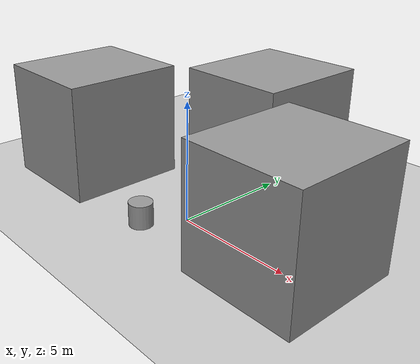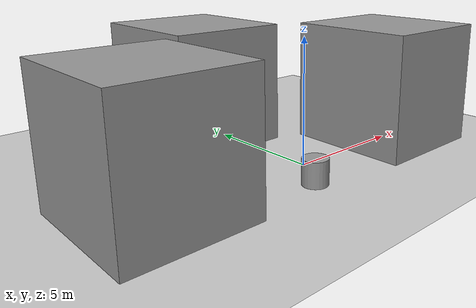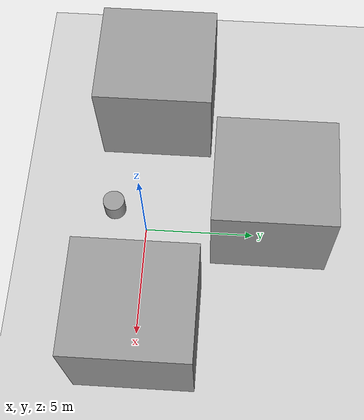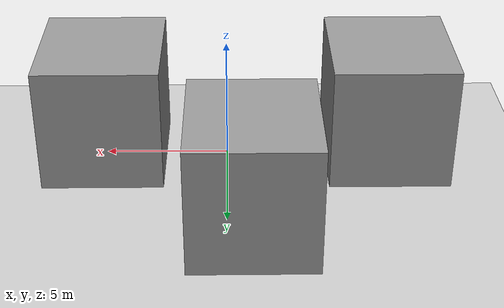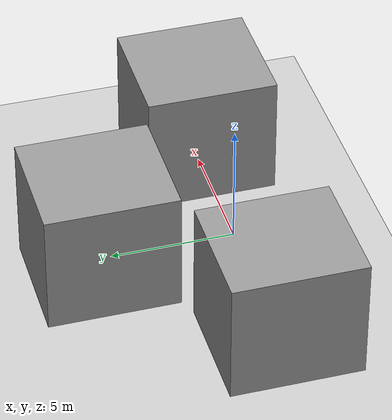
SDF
<sdf version="1.6">
 <world name="default">
  <light name="sun" type="directional">
   <pose>0 0 10 0 -0 0</pose>
   <diffuse>0.8 0.8 0.8 1</diffuse>
   <specular>0.2 0.2 0.2 1</specular>
   <attenuation>
    <range>1000</range>
    <constant>0.9</constant>
    <linear>0.01</linear>
    <quadratic>0.001</quadratic>
   </attenuation>
   <direction>-0.5 0.1 -0.9</direction>
  </light>
  <model name="ground_plane">
   <static>1</static>
   <link name="link">
    <collision name="collision">
     <geometry><plane><normal>0 0 1</normal><size>100 100</size></plane></geometry>
     <surface>
      <contact><collide_bitmask>65535</collide_bitmask></contact>
      <friction><ode><mu>100</mu><mu2>50</mu2></ode></friction>
     </surface>
    </collision>
    <visual name="visual">
     <cast_shadows>0</cast_shadows>
     <geometry><plane><normal>0 0 1</normal><size>100 100</size></plane></geometry>
     <material>
      <script><uri>file://media/materials/scripts/gazebo.material</uri><name>Gazebo/Grey</name></script>
     </material>
    </visual>
   </link>
  </model>
  <gravity>0 0 -9.8</gravity>
  <magnetic_field>6e-06 2.3e-05 -4.2e-05</magnetic_field>
  <atmosphere type="adiabatic"/>
  <physics name="default_physics" default="0" type="ode">
   <ode>
    <solver>
     <type>quick</type>
     <iters>1000</iters>
     <sor>1.3</sor>
     <use_dynamic_moi_rescaling>0</use_dynamic_moi_rescaling>
    </solver>
    <constraints>
     <cfm>0</cfm>
     <erp>0.2</erp>
     <contact_max_correcting_vel>100</contact_max_correcting_vel>
     <contact_surface_layer>0.001</contact_surface_layer>
    </constraints>
   </ode>
   <max_step_size>0.01</max_step_size>
   <real_time_factor>1</real_time_factor>
   <real_time_update_rate>100</real_time_update_rate>
  </physics>
  <scene><ambient>0.4 0.4 0.4 1</ambient><background>0.7 0.7 0.7 1</background><shadows>1</shadows></scene>
  <plugin name="ros_interface_plugin" filename="librotors_gazebo_ros_interface_plugin.so"/>
  <spherical_coordinates>
   <surface_model>EARTH_WGS84</surface_model>
   <latitude_deg>0</latitude_deg>
   <longitude_deg>0</longitude_deg>
   <elevation>0</elevation>
   <heading_deg>0</heading_deg>
  </spherical_coordinates>
  <model name="unit_box">
   <pose>-6.50878 0.170591 2.51734 -1e-06 -0 -0.000133</pose>
   <link name="link">
    <inertial>
     <mass>1</mass>
     <inertia>
      <ixx>0.166667</ixx>
      <ixy>0</ixy>
      <ixz>0</ixz>
      <iyy>0.166667</iyy>
      <iyz>0</iyz>
      <izz>0.166667</izz>
     </inertia>
    </inertial>
    <collision name="collision"><geometry><box><size>4.8634 5.26242 5.03467</size></box></geometry></collision>
    <visual name="visual">
     <geometry><box><size>4.8634 5.26242 5.03467</size></box></geometry>
     <material>
      <script><name>Gazebo/Grey</name><uri>file://media/materials/scripts/gazebo.material</uri></script>
     </material>
    </visual>
   </link>
  </model>
  <model name="unit_box_clone">
   <pose>-0.950322 5.72004 2.51734 -1e-06 -0 -0.000129</pose>
   <link name="link">
    <inertial>
     <mass>1</mass>
     <inertia>
      <ixx>0.166667</ixx>
      <ixy>0</ixy>
      <ixz>0</ixz>
      <iyy>0.166667</iyy>
      <iyz>0</iyz>
      <izz>0.166667</izz>
     </inertia>
    </inertial>
    <collision name="collision"><geometry><box><size>4.8634 5.26242 5.03467</size></box></geometry></collision>
    <visual name="visual">
     <geometry><box><size>4.8634 5.26242 5.03467</size></box></geometry>
     <material>
      <script><name>Gazebo/Grey</name><uri>file://media/materials/scripts/gazebo.material</uri></script>
     </material>
    </visual>
   </link>
  </model>
  <model name="unit_box_clone_clone">
   <pose>4.976 0.113406 2.51734 1e-06 0 -0.000129</pose>
   <link name="link">
    <inertial>
     <mass>1</mass>
     <inertia>
      <ixx>0.166667</ixx>
      <ixy>0</ixy>
      <ixz>0</ixz>
      <iyy>0.166667</iyy>
      <iyz>0</iyz>
      <izz>0.166667</izz>
     </inertia>
    </inertial>
    <collision name="collision"><geometry><box><size>4.8634 5.26242 5.03467</size></box></geometry></collision>
    <visual name="visual">
     <geometry><box><size>4.8634 5.26242 5.03467</size></box></geometry>
     <material>
      <script><name>Gazebo/Grey</name><uri>file://media/materials/scripts/gazebo.material</uri></script>
     </material>
    </visual>
   </link>
  </model>
  <model name="unit_cylinder">
   <pose>-0.975754 -1.56801 0.499997 3e-06 4e-06 -0</pose>
   <link name="link">
    <inertial>
     <mass>1</mass>
     <inertia><ixx>0.145833</ixx><ixy>0</ixy><ixz>0</ixz><iyy>0.145833</iyy><iyz>0</iyz><izz>0.125</izz></inertia>
    </inertial>
    <collision name="collision">
     <geometry><cylinder><radius>0.5</radius><length>1</length></cylinder></geometry>
    </collision>
    <visual name="visual">
     <geometry><cylinder><radius>0.5</radius><length>1</length></cylinder></geometry>
     <material>
      <script><name>Gazebo/Grey</name><uri>file://media/materials/scripts/gazebo.material</uri></script>
     </material>
    </visual>
   </link>
  </model>
 </world>
</sdf>
